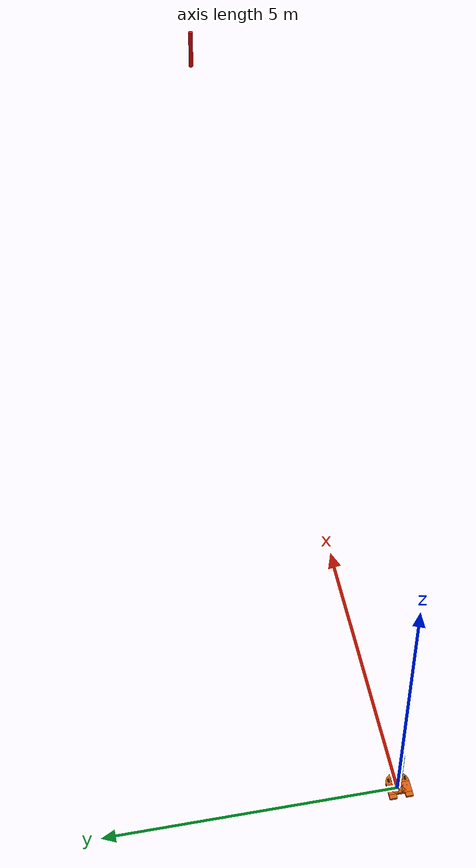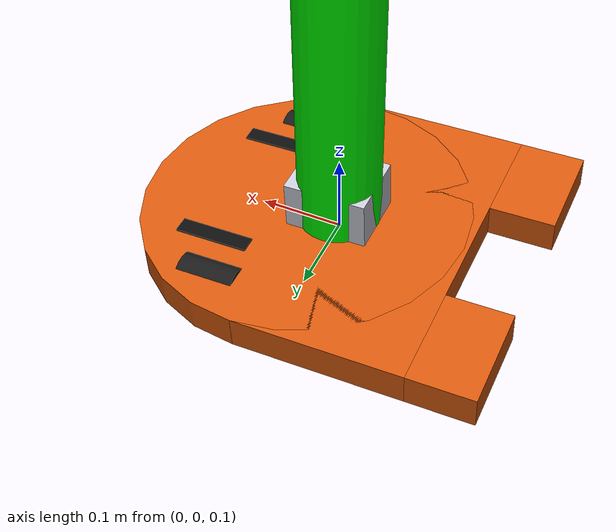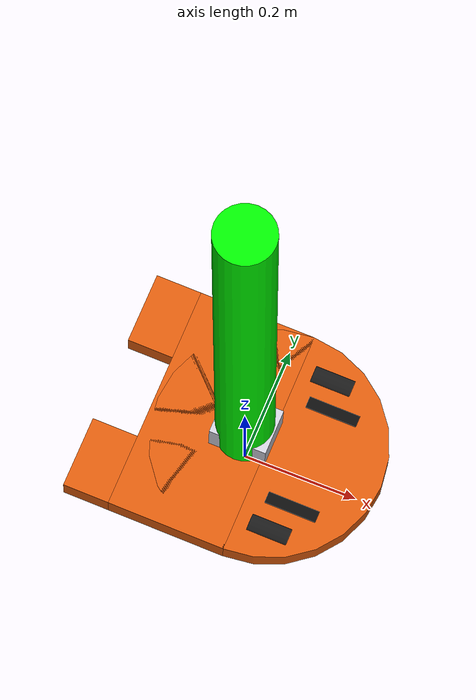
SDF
<sdf version="1.9">
 <world name="water_test">
  <physics name="1ms" type="ode">
   <max_step_size>0.001</max_step_size>
   <real_time_factor>1.0</real_time_factor>
  </physics>
  <gravity>0 0 -9.81</gravity>
  <plugin filename="gz-sim-physics-system" name="gz::sim::systems::Physics"/>
  <plugin filename="gz-sim-sensors-system" name="gz::sim::systems::Sensors">
   <render_engine>ogre2</render_engine>
   <background_color>0.8 0.8 0.8</background_color>
  </plugin>
  <plugin filename="gz-sim-scene-broadcaster-system" name="gz::sim::systems::SceneBroadcaster"/>
  <plugin filename="gz-sim-user-commands-system" name="gz::sim::systems::UserCommands"/>
  <plugin filename="gz-sim-wind-effects-system" name="gz::sim::systems::WindEffects">
   <force_approximation_scaling_factor>1.0</force_approximation_scaling_factor>
   <horizontal>
    <magnitude>
     <time_for_rise>5</time_for_rise>
     <sin><amplitude_percent>0.05</amplitude_percent><period>60</period></sin>
     <noise type="gaussian"><mean>2.0</mean><stddev>0.5</stddev></noise>
    </magnitude>
    <direction>
     <time_for_rise>2</time_for_rise>
     <sin><amplitude>5</amplitude><period>20</period></sin>
     <noise type="gaussian"><mean>0</mean><stddev>2</stddev></noise>
    </direction>
   </horizontal>
   <vertical>
    <time_for_rise>5</time_for_rise>
    <noise type="gaussian"><mean>0</mean><stddev>0.05</stddev></noise>
   </vertical>
  </plugin>
  <scene><ambient>1.0 1.0 1.0</ambient><background>0.8 0.8 0.8</background></scene>
  <light type="directional" name="sun">
   <cast_shadows>false</cast_shadows>
   <pose>0 0 10 0 0 0</pose>
   <diffuse>1 1 1 1</diffuse>
   <specular>0.5 0.5 0.5 1</specular>
   <direction>-0.3 0.3 -0.9</direction>
  </light>
  <model name="start_marker">
   <static>true</static>
   <pose>0 0 0.5 0 0 0</pose>
   <link name="link">
    <visual name="visual">
     <geometry><cylinder><radius>0.05</radius><length>1.0</length></cylinder></geometry>
     <material><ambient>0 1 0 1</ambient><diffuse>0 1 0 1</diffuse></material>
    </visual>
   </link>
  </model>
  <model name="end_marker">
   <static>true</static>
   <pose>20 0 0.5 0 0 0</pose>
   <link name="link">
    <visual name="visual">
     <geometry><cylinder><radius>0.05</radius><length>1.0</length></cylinder></geometry>
     <material><ambient>1 0 0 1</ambient><diffuse>1 0 0 1</diffuse></material>
    </visual>
   </link>
  </model>
  <model name="test_boat">
   <pose>0 0 0.1 0 0.031 0</pose>
   <link name="hull">
    <inertial>
     <mass>1.0</mass>
     <inertia><ixx>0.404</ixx><iyy>0.59206</iyy><izz>0.98806</izz><ixy>0</ixy><ixz>0</ixz><iyz>0</iyz></inertia>
    </inertial>
    <enable_wind>true</enable_wind>
    <collision name="collision_nose">
     <pose>0.0425 0 0 0 0 0</pose>
     <geometry><cylinder><radius>0.2</radius><length>0.04</length></cylinder></geometry>
    </collision>
    <visual name="visual_nose">
     <pose>0.0425 0 0 0 0 0</pose>
     <geometry><cylinder><radius>0.2</radius><length>0.04</length></cylinder></geometry>
     <material><ambient>0.85 0.35 0.05 1</ambient><diffuse>0.85 0.35 0.05 1</diffuse></material>
    </visual>
    <collision name="collision_body">
     <pose>-0.06 0 0 0 0 0</pose>
     <geometry><box><size>0.205 0.4 0.04</size></box></geometry>
    </collision>
    <visual name="visual_body">
     <pose>-0.06 0 0 0 0 0</pose>
     <geometry><box><size>0.205 0.4 0.04</size></box></geometry>
     <material><ambient>0.85 0.35 0.05 1</ambient><diffuse>0.85 0.35 0.05 1</diffuse></material>
    </visual>
    <collision name="collision_leg_left">
     <pose>-0.2025 0.1375 0 0 0 0</pose>
     <geometry><box><size>0.08 0.125 0.04</size></box></geometry>
    </collision>
    <visual name="visual_leg_left">
     <pose>-0.2025 0.1375 0 0 0 0</pose>
     <geometry><box><size>0.08 0.125 0.04</size></box></geometry>
     <material><ambient>0.85 0.35 0.05 1</ambient><diffuse>0.85 0.35 0.05 1</diffuse></material>
    </visual>
    <collision name="collision_leg_right">
     <pose>-0.2025 -0.1375 0 0 0 0</pose>
     <geometry><box><size>0.08 0.125 0.04</size></box></geometry>
    </collision>
    <visual name="visual_leg_right">
     <pose>-0.2025 -0.1375 0 0 0 0</pose>
     <geometry><box><size>0.08 0.125 0.04</size></box></geometry>
     <material><ambient>0.85 0.35 0.05 1</ambient><diffuse>0.85 0.35 0.05 1</diffuse></material>
    </visual>
    <visual name="visual_center_block">
     <pose>0.0 0 0.05 0 0 0</pose>
     <geometry><box><size>0.1 0.08 0.06</size></box></geometry>
     <material><ambient>0.8 0.8 0.85 1</ambient><diffuse>0.8 0.8 0.85 1</diffuse></material>
    </visual>
    <visual name="visual_handle_post_l">
     <pose>0.0 0.035 0.045 0 0 0</pose>
     <geometry><cylinder><radius>0.006</radius><length>0.05</length></cylinder></geometry>
     <material><ambient>0.85 0.35 0.05 1</ambient><diffuse>0.85 0.35 0.05 1</diffuse></material>
    </visual>
    <visual name="visual_handle_post_r">
     <pose>0.0 -0.035 0.045 0 0 0</pose>
     <geometry><cylinder><radius>0.006</radius><length>0.05</length></cylinder></geometry>
     <material><ambient>0.85 0.35 0.05 1</ambient><diffuse>0.85 0.35 0.05 1</diffuse></material>
    </visual>
    <visual name="visual_handle_bar">
     <pose>0.0 0 0.075 1.5708 0 0</pose>
     <geometry><cylinder><radius>0.006</radius><length>0.076</length></cylinder></geometry>
     <material><ambient>0.85 0.35 0.05 1</ambient><diffuse>0.85 0.35 0.05 1</diffuse></material>
    </visual>
    <visual name="visual_slot_left">
     <pose>0.12 0.09 0.021 0 0 0</pose>
     <geometry><box><size>0.09 0.02 0.002</size></box></geometry>
     <material><ambient>0.05 0.05 0.05 1</ambient><diffuse>0.05 0.05 0.05 1</diffuse></material>
    </visual>
    <visual name="visual_slot_right">
     <pose>0.12 -0.09 0.021 0 0 0</pose>
     <geometry><box><size>0.09 0.02 0.002</size></box></geometry>
     <material><ambient>0.05 0.05 0.05 1</ambient><diffuse>0.05 0.05 0.05 1</diffuse></material>
    </visual>
   </link>
   <link name="left_prop">
    <pose relative_to="hull">0.10 0.14 0 0 1.5708 0</pose>
    <inertial>
     <mass>0.05</mass>
     <inertia><ixx>1e-5</ixx><iyy>1e-5</iyy><izz>1e-5</izz><ixy>0</ixy><ixz>0</ixz><iyz>0</iyz></inertia>
    </inertial>
    <visual name="visual">
     <geometry><cylinder><radius>0.025</radius><length>0.07</length></cylinder></geometry>
     <material><ambient>0.1 0.1 0.1 1</ambient><diffuse>0.1 0.1 0.1 1</diffuse></material>
    </visual>
   </link>
   <joint name="left_thruster_joint" type="revolute">
    <parent>hull</parent>
    <child>left_prop</child>
    <axis><xyz>0 0 1</xyz><limit><lower>-1e16</lower><upper>1e16</upper></limit></axis>
   </joint>
   <link name="right_prop">
    <pose relative_to="hull">0.10 -0.14 0 0 1.5708 0</pose>
    <inertial>
     <mass>0.05</mass>
     <inertia><ixx>1e-5</ixx><iyy>1e-5</iyy><izz>1e-5</izz><ixy>0</ixy><ixz>0</ixz><iyz>0</iyz></inertia>
    </inertial>
    <visual name="visual">
     <geometry><cylinder><radius>0.025</radius><length>0.07</length></cylinder></geometry>
     <material><ambient>0.1 0.1 0.1 1</ambient><diffuse>0.1 0.1 0.1 1</diffuse></material>
    </visual>
   </link>
   <joint name="right_thruster_joint" type="revolute">
    <parent>hull</parent>
    <child>right_prop</child>
    <axis><xyz>0 0 1</xyz><limit><lower>-1e16</lower><upper>1e16</upper></limit></axis>
   </joint>
   <plugin filename="gz-waves1-hydrodynamics-system" name="gz::sim::systems::Hydrodynamics">
    <enable>test_boat::hull</enable>
    <hydrodynamics>
     <damping_on>1</damping_on>
     <viscous_drag_on>1</viscous_drag_on>
     <pressure_drag_on>1</pressure_drag_on>
     <cDampL1>1.0E-6</cDampL1>
     <cDampL2>1.0E-6</cDampL2>
     <cDampR1>1.0E-6</cDampR1>
     <cDampR2>1.0E-6</cDampR2>
     <cPDrag1>1.0E+2</cPDrag1>
     <cPDrag2>1.0E+2</cPDrag2>
     <fPDrag>0.4</fPDrag>
     <cSDrag1>1.0E+2</cSDrag1>
     <cSDrag2>1.0E+2</cSDrag2>
     <fSDrag>0.4</fSDrag>
     <vRDrag>1.0</vRDrag>
    </hydrodynamics>
    <markers>
     <update_rate>10</update_rate>
     <water_patch>0</water_patch>
     <waterline>0</waterline>
     <underwater_surface>0</underwater_surface>
    </markers>
   </plugin>
   <plugin filename="gz-sim-thruster-system" name="gz::sim::systems::Thruster">
    <joint_name>left_thruster_joint</joint_name>
    <thrust_coefficient>0.005</thrust_coefficient>
    <fluid_density>1000</fluid_density>
    <propeller_diameter>0.05</propeller_diameter>
   </plugin>
   <plugin filename="gz-sim-thruster-system" name="gz::sim::systems::Thruster">
    <joint_name>right_thruster_joint</joint_name>
    <thrust_coefficient>0.005</thrust_coefficient>
    <fluid_density>1000</fluid_density>
    <propeller_diameter>0.05</propeller_diameter>
   </plugin>
  </model>
 </world>
</sdf>
